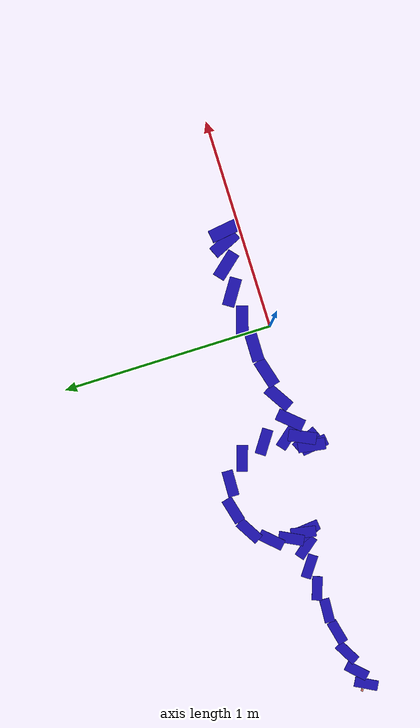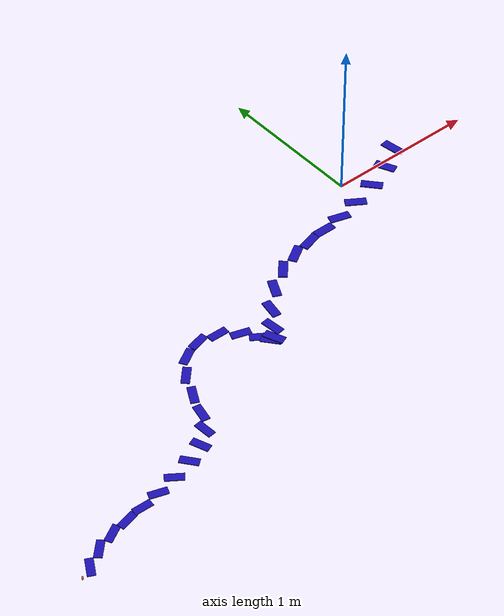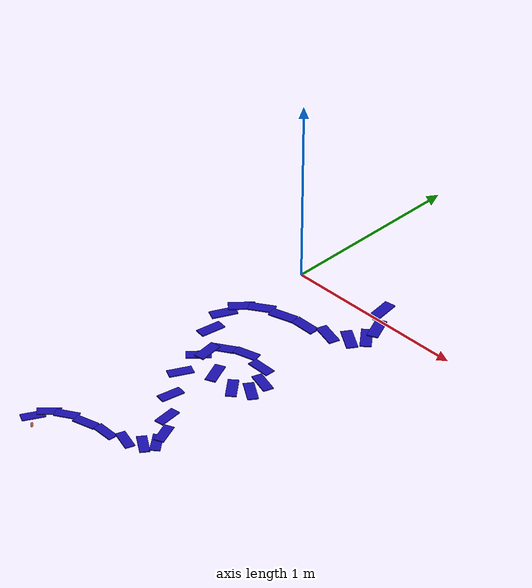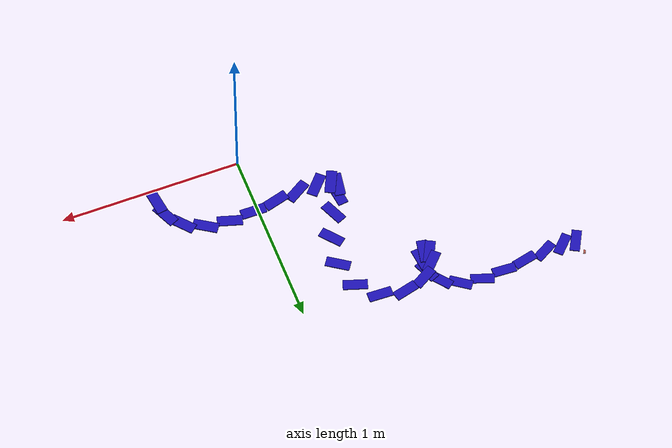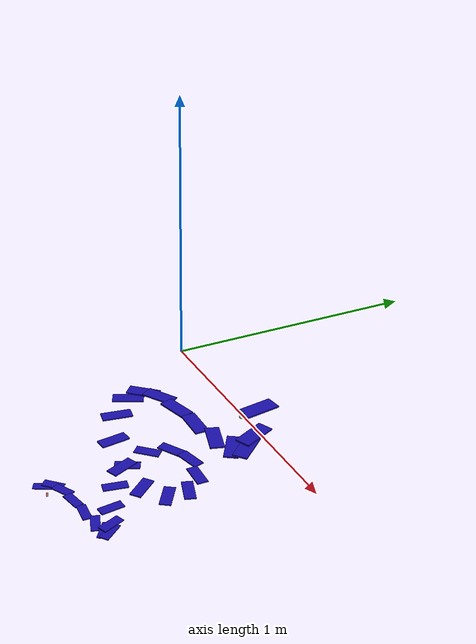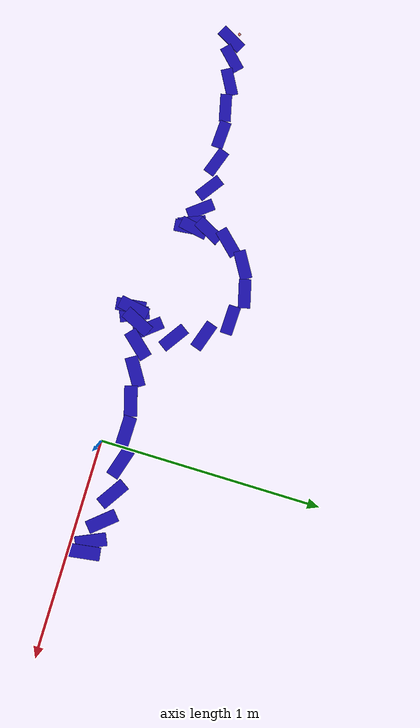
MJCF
<mujoco model="base">
  <compiler angle="radian"/>

  <option timestep="0.0005" tolerance="1e-10" integrator="RK4" cone="elliptic" jacobian="sparse" iterations="30"/>

  <size njmax="5000" nconmax="5000"/>

  <visual>
    <quality shadowsize="2048"/>
    <map stiffness="700" fogstart="10" fogend="15" znear="0.001" zfar="40" shadowscale="0.5"/>
    <rgba haze="0.15 0.25 0.35 1"/>
  </visual>

  <statistic meansize="0.05" extent="2"/>

  <extension>
    <plugin plugin="mujoco.elasticity.cable">
      <instance name="composite">
        <config key="twist" value="7859.503362562732"/>
        <config key="bend" value="1571900.6725125466"/>
        <config key="flat" value="false"/>
      </instance>
    </plugin>
  </extension>

  <asset>
    <texture type="skybox" builtin="gradient" rgb1="1 1 0.9" rgb2="0.9 0.9 0.81" width="512" height="3072"/>
    <texture type="2d" name="texplane" builtin="checker" mark="cross" rgb1="0.2 0.3 0.4" rgb2="0.1 0.15 0.2" markrgb="0.8 0.8 0.8" width="512" height="512"/>
    <material name="matplane" texture="texplane" texuniform="true" reflectance="0.3"/>
  </asset>

  <worldbody>
    <geom name="floor" size="3 3 0.125" pos="0 0 -10" type="plane" condim="1" material="matplane"/>
    <geom name="axis_x" size="0.002 0.015" pos="0.015 0 0" quat="0.707107 0 -0.707107 0" type="capsule" rgba="1 0 0 1"/>
    <geom name="axis_y" size="0.002 0.015" pos="0 0.015 0" quat="0.707107 0.707107 0 0" type="capsule" rgba="0 1 0 1"/>
    <geom name="axis_z" size="0.002 0.015" pos="0 0 0.015" quat="0 1 0 0" type="capsule" rgba="0 0 1 1"/>
    <body name="eef_body2" pos="0.5 0 0" quat="0 0.65522 0.755438 0">
      <geom name="eef_geom2" size="0.006 0.006 0.012" type="box" contype="0" conaffinity="0" mass="10" rgba="0.1 0.8 0.2 0.7"/>
      <site name="eef_body2_site" pos="0 0 0" size="0.01" group="2" rgba="0 0 0 0"/>
      <body name="eef_body2_sensor">
        <site name="sensor_site2" pos="0 0 0" size="0.01" group="2" rgba="0 0 0 0"/>
      </body>
    </body>
    <body name="eef_body" pos="-2.14969 0.0235843 -2.18129" quat="0 -0.515174 0.857086 0">
      <geom name="eef_geom" size="0.006 0.006 0.012" type="box" contype="0" conaffinity="0" mass="10" rgba="0.8 0.2 0.1 0.7"/>
      <site name="eef_body_site" pos="0 0 0" size="0.01" group="1" rgba="0 0 0 0"/>
      <body name="eef_body_sensor">
        <site name="sensor_site1" pos="0 0 0" size="0.01" group="1" rgba="0 0 0 0"/>
      </body>
    </body>
    <body name="stiffrope" pos="0.5 0 0">
      <joint name="freejoint_A" type="free" limited="false" actuatorfrclimited="false"/>
      <body name="B_0" quat="0 0.65522 0.755438 0">
        <geom name="G0" size="0.003 0.03 0.0706862" pos="0.0706862 0 0" quat="0.707107 0 -0.707107 0" type="box" conaffinity="0" condim="1" solref="0.001" mass="0.0038779" rgba="0.1 0.0533333 0.673333 1"/>
        <plugin instance="composite"/>
        <body name="B_1" pos="0.0199862 -0.0197854 0.138547" quat="0.989956 0 0 -0.141372">
          <joint name="J_1" pos="0 0 0" type="ball" group="3" actuatorfrclimited="false" damping="0.1"/>
          <geom name="G1" size="0.003 0.03 0.0706862" pos="0.0706862 0 0" quat="0.707107 0 -0.707107 0" type="box" conaffinity="0" condim="1" solref="0.001" mass="0.0038779" rgba="0.1 0.0533333 0.673333 1"/>
          <plugin instance="composite"/>
          <body name="B_2" pos="0.0583607 -0.0531558 0.11728" quat="0.989956 0 0 -0.141372">
            <joint name="J_2" pos="0 0 0" type="ball" group="3" actuatorfrclimited="false" damping="0.1"/>
            <geom name="G2" size="0.003 0.03 0.0706862" pos="0.0706862 0 0" quat="0.707107 0 -0.707107 0" type="box" conaffinity="0" condim="1" solref="0.001" mass="0.0038779" rgba="0.1 0.0533333 0.673333 1"/>
            <plugin instance="composite"/>
            <body name="B_3" pos="0.0920697 -0.0698678 0.0814115" quat="0.989956 0 0 -0.141372">
              <joint name="J_3" pos="0 0 0" type="ball" group="3" actuatorfrclimited="false" damping="0.1"/>
              <geom name="G3" size="0.003 0.03 0.0706862" pos="0.0706862 0 0" quat="0.707107 0 -0.707107 0" type="box" conaffinity="0" condim="1" solref="0.001" mass="0.0038779" rgba="0.1 0.0533333 0.673333 1"/>
              <plugin instance="composite"/>
              <body name="B_4" pos="0.118418 -0.0646841 0.0421817" quat="0.989956 0 0 -0.141372">
                <joint name="J_4" pos="0 0 0" type="ball" group="3" actuatorfrclimited="false" damping="0.1"/>
                <geom name="G4" size="0.003 0.03 0.0706862" pos="0.0706862 0 0" quat="0.707107 0 -0.707107 0" type="box" conaffinity="0" condim="1" solref="0.001" mass="0.0038779" rgba="0.1 0.0533333 0.673333 1"/>
                <plugin instance="composite"/>
                <body name="B_5" pos="0.1353 -0.0392292 0.0118848" quat="0.989956 0 0 -0.141372">
                  <joint name="J_5" pos="0 0 0" type="ball" group="3" actuatorfrclimited="false" damping="0.1"/>
                  <geom name="G5" size="0.003 0.03 0.0706862" pos="0.0706862 0 0" quat="0.707107 0 -0.707107 0" type="box" conaffinity="0" condim="1" solref="0.001" mass="0.0038779" rgba="0.1 0.0533333 0.673333 1"/>
                  <plugin instance="composite"/>
                  <body name="B_6" pos="0.141365 -0.00148034 1.55027e-05" quat="0.989956 0 0 -0.141372">
                    <joint name="J_6" pos="0 0 0" type="ball" group="3" actuatorfrclimited="false" damping="0.1"/>
                    <geom name="G6" size="0.003 0.03 0.0706862" pos="0.0706862 0 0" quat="0.707107 0 -0.707107 0" type="box" conaffinity="0" condim="1" solref="0.001" mass="0.0038779" rgba="0.1 0.0533333 0.673333 1"/>
                    <plugin instance="composite"/>
                    <body name="B_7" pos="0.136128 0.0367324 0.0102936" quat="0.989956 0 0 -0.141372">
                      <joint name="J_7" pos="0 0 0" type="ball" group="3" actuatorfrclimited="false" damping="0.1"/>
                      <geom name="G7" size="0.003 0.03 0.0706862" pos="0.0706862 0 0" quat="0.707107 0 -0.707107 0" type="box" conaffinity="0" condim="1" solref="0.001" mass="0.0038779" rgba="0.1 0.0533333 0.673333 1"/>
                      <plugin instance="composite"/>
                      <body name="B_8" pos="0.120009 0.0634337 0.039498" quat="0.989956 0 0 -0.141372">
                        <joint name="J_8" pos="0 0 0" type="ball" group="3" actuatorfrclimited="false" damping="0.1"/>
                        <geom name="G8" size="0.003 0.03 0.0706862" pos="0.0706862 0 0" quat="0.707107 0 -0.707107 0" type="box" conaffinity="0" condim="1" solref="0.001" mass="0.0038779" rgba="0.1 0.0533333 0.673333 1"/>
                        <plugin instance="composite"/>
                        <body name="B_9" pos="0.0942962 0.0702557 0.0784764" quat="0.989956 0 0 -0.141372">
                          <joint name="J_9" pos="0 0 0" type="ball" group="3" actuatorfrclimited="false" damping="0.1"/>
                          <geom name="G9" size="0.003 0.03 0.0706862" pos="0.0706862 0 0" quat="0.707107 0 -0.707107 0" type="box" conaffinity="0" condim="1" solref="0.001" mass="0.0038779" rgba="0.1 0.0533333 0.673333 1"/>
                          <plugin instance="composite"/>
                          <body name="B_10" pos="0.0610446 0.0550603 0.115013" quat="0.989956 0 0 -0.141372">
                            <joint name="J_10" pos="0 0 0" type="ball" group="3" actuatorfrclimited="false" damping="0.1"/>
                            <geom name="G10" size="0.003 0.03 0.0706862" pos="0.0706862 0 0" quat="0.707107 0 -0.707107 0" type="box" conaffinity="0" condim="1" solref="0.001" mass="0.0038779" rgba="0.1 0.0533333 0.673333 1"/>
                            <plugin instance="composite"/>
                            <body name="B_11" pos="0.0229127 0.0226098 0.137659" quat="-0.989956 0 0 0.141372">
                              <joint name="J_11" pos="0 0 0" type="ball" group="3" actuatorfrclimited="false" damping="0.1"/>
                              <geom name="G11" size="0.003 0.03 0.0706862" pos="0.0706862 0 0" quat="0.707107 0 -0.707107 0" type="box" conaffinity="0" condim="1" solref="0.001" mass="0.0038779" rgba="0.1 0.0533333 0.673333 1"/>
                              <plugin instance="composite"/>
                              <body name="B_12" pos="-0.0170508 -0.0169264 0.139316" quat="0.989956 0 0 -0.141372">
                                <joint name="J_12" pos="0 0 0" type="ball" group="3" actuatorfrclimited="false" damping="0.1"/>
                                <geom name="G12" size="0.003 0.03 0.0706862" pos="0.0706862 0 0" quat="0.707107 0 -0.707107 0" type="box" conaffinity="0" condim="1" solref="0.001" mass="0.0038779" rgba="0.1 0.0533333 0.673333 1"/>
                                <plugin instance="composite"/>
                                <body name="B_13" pos="-0.0556513 -0.051158 0.119465" quat="0.989956 0 0 -0.141372">
                                  <joint name="J_13" pos="0 0 0" type="ball" group="3" actuatorfrclimited="false" damping="0.1"/>
                                  <geom name="G13" size="0.003 0.03 0.0706862" pos="0.0706862 0 0" quat="0.707107 0 -0.707107 0" type="box" conaffinity="0" condim="1" solref="0.001" mass="0.0038779" rgba="0.1 0.0533333 0.673333 1"/>
                                  <plugin instance="composite"/>
                                  <body name="B_14" pos="-0.0898027 -0.0693574 0.0843279" quat="0.989956 0 0 -0.141372">
                                    <joint name="J_14" pos="0 0 0" type="ball" group="3" actuatorfrclimited="false" damping="0.1"/>
                                    <geom name="G14" size="0.003 0.03 0.0706862" pos="0.0706862 0 0" quat="0.707107 0 -0.707107 0" type="box" conaffinity="0" condim="1" solref="0.001" mass="0.0038779" rgba="0.1 0.0533333 0.673333 1"/>
                                    <plugin instance="composite"/>
                                    <body name="B_15" pos="-0.116775 -0.065821 0.0449154" quat="0.989956 0 0 -0.141372">
                                      <joint name="J_15" pos="0 0 0" type="ball" group="3" actuatorfrclimited="false" damping="0.1"/>
                                      <geom name="G15" size="0.003 0.03 0.0706862" pos="0.0706862 0 0" quat="0.707107 0 -0.707107 0" type="box" conaffinity="0" condim="1" solref="0.001" mass="0.0038779" rgba="0.1 0.0533333 0.673333 1"/>
                                      <plugin instance="composite"/>
                                      <body name="B_16" pos="-0.134412 -0.0416571 0.0135791" quat="0.989956 0 0 -0.141372">
                                        <joint name="J_16" pos="0 0 0" type="ball" group="3" actuatorfrclimited="false" damping="0.1"/>
                                        <geom name="G16" size="0.003 0.03 0.0706862" pos="0.0706862 0 0" quat="0.707107 0 -0.707107 0" type="box" conaffinity="0" condim="1" solref="0.001" mass="0.0038779" rgba="0.1 0.0533333 0.673333 1"/>
                                        <plugin instance="composite"/>
                                        <body name="B_17" pos="-0.141303 -0.00443843 0.000139483" quat="0.989956 0 0 -0.141372">
                                          <joint name="J_17" pos="0 0 0" type="ball" group="3" actuatorfrclimited="false" damping="0.1"/>
                                          <geom name="G17" size="0.003 0.03 0.0706862" pos="0.0706862 0 0" quat="0.707107 0 -0.707107 0" type="box" conaffinity="0" condim="1" solref="0.001" mass="0.0038779" rgba="0.1 0.0533333 0.673333 1"/>
                                          <plugin instance="composite"/>
                                          <body name="B_18" pos="-0.136897 0.0341712 0.00880836" quat="0.989956 0 0 -0.141372">
                                            <joint name="J_18" pos="0 0 0" type="ball" group="3" actuatorfrclimited="false" damping="0.1"/>
                                            <geom name="G18" size="0.003 0.03 0.0706862" pos="0.0706862 0 0" quat="0.707107 0 -0.707107 0" type="box" conaffinity="0" condim="1" solref="0.001" mass="0.0038779" rgba="0.1 0.0533333 0.673333 1"/>
                                            <plugin instance="composite"/>
                                            <body name="B_19" pos="-0.121548 0.062072 0.036869" quat="0.989956 0 0 -0.141372">
                                              <joint name="J_19" pos="0 0 0" type="ball" group="3" actuatorfrclimited="false" damping="0.1"/>
                                              <geom name="G19" size="0.003 0.03 0.0706862" pos="0.0706862 0 0" quat="0.707107 0 -0.707107 0" type="box" conaffinity="0" condim="1" solref="0.001" mass="0.0038779" rgba="0.1 0.0533333 0.673333 1"/>
                                              <plugin instance="composite"/>
                                              <body name="B_20" pos="-0.0964814 0.0705202 0.0755275" quat="0.989956 0 0 -0.141372">
                                                <joint name="J_20" pos="0 0 0" type="ball" group="3" actuatorfrclimited="false" damping="0.1"/>
                                                <geom name="G20" size="0.003 0.03 0.0706862" pos="0.0706862 0 0" quat="0.707107 0 -0.707107 0" type="box" conaffinity="0" condim="1" solref="0.001" mass="0.0038779" rgba="0.1 0.0533333 0.673333 1"/>
                                                <plugin instance="composite"/>
                                                <body name="B_21" pos="-0.0637016 0.0568683 0.112669" quat="0.989956 0 0 -0.141372">
                                                  <joint name="J_21" pos="0 0 0" type="ball" group="3" actuatorfrclimited="false" damping="0.1"/>
                                                  <geom name="G21" size="0.003 0.03 0.0706862" pos="0.0706862 0 0" quat="0.707107 0 -0.707107 0" type="box" conaffinity="0" condim="1" solref="0.001" mass="0.0038779" rgba="0.1 0.0533333 0.673333 1"/>
                                                  <plugin instance="composite"/>
                                                  <body name="B_22" pos="-0.0258292 0.0253945 0.136653" quat="0.989956 0 0 -0.141372">
                                                    <joint name="J_22" pos="0 0 0" type="ball" group="3" actuatorfrclimited="false" damping="0.1"/>
                                                    <geom name="G22" size="0.003 0.03 0.0706862" pos="0.0706862 0 0" quat="0.707107 0 -0.707107 0" type="box" conaffinity="0" condim="1" solref="0.001" mass="0.0038779" rgba="0.1 0.0533333 0.673333 1"/>
                                                    <plugin instance="composite"/>
                                                    <body name="B_23" pos="0.014108 -0.0140376 0.139965" quat="0.989956 0 0 -0.141372">
                                                      <joint name="J_23" pos="0 0 0" type="ball" group="3" actuatorfrclimited="false" damping="0.1"/>
                                                      <geom name="G23" size="0.003 0.03 0.0706862" pos="0.0706862 0 0" quat="0.707107 0 -0.707107 0" type="box" conaffinity="0" condim="1" solref="0.001" mass="0.0038779" rgba="0.1 0.0533333 0.673333 1"/>
                                                      <plugin instance="composite"/>
                                                      <body name="B_24" pos="0.0529175 -0.0490705 0.121565" quat="0.989956 0 0 -0.141372">
                                                        <joint name="J_24" pos="0 0 0" type="ball" group="3" actuatorfrclimited="false" damping="0.1"/>
                                                        <geom name="G24" size="0.003 0.03 0.0706862" pos="0.0706862 0 0" quat="0.707107 0 -0.707107 0" type="box" conaffinity="0" condim="1" solref="0.001" mass="0.0038779" rgba="0.1 0.0533333 0.673333 1"/>
                                                        <plugin instance="composite"/>
                                                        <body name="B_25" pos="0.0874964 -0.0687253 0.0872203" quat="0.989956 0 0 -0.141372">
                                                          <joint name="J_25" pos="0 0 0" type="ball" group="3" actuatorfrclimited="false" damping="0.1"/>
                                                          <geom name="G25" size="0.003 0.03 0.0706862" pos="0.0706862 0 0" quat="0.707107 0 -0.707107 0" type="box" conaffinity="0" condim="1" solref="0.001" mass="0.0038779" rgba="0.1 0.0533333 0.673333 1"/>
                                                          <plugin instance="composite"/>
                                                          <body name="B_26" pos="0.11508 -0.0668424 0.0476943" quat="0.989956 0 0 -0.141372">
                                                            <joint name="J_26" pos="0 0 0" type="ball" group="3" actuatorfrclimited="false" damping="0.1"/>
                                                            <geom name="G26" size="0.003 0.03 0.0706862" pos="0.0706862 0 0" quat="0.707107 0 -0.707107 0" type="box" conaffinity="0" condim="1" solref="0.001" mass="0.0038779" rgba="0.1 0.0533333 0.673333 1"/>
                                                            <plugin instance="composite"/>
                                                            <body name="B_27" pos="0.133464 -0.044012 0.0153736" quat="0.989956 0 0 -0.141372">
                                                              <joint name="J_27" pos="0 0 0" type="ball" group="3" actuatorfrclimited="false" damping="0.1"/>
                                                              <geom name="G27" size="0.003 0.03 0.0706862" pos="0.0706862 0 0" quat="0.707107 0 -0.707107 0" type="box" conaffinity="0" condim="1" solref="0.001" mass="0.0038779" rgba="0.1 0.0533333 0.673333 1"/>
                                                              <plugin instance="composite"/>
                                                              <body name="B_28" pos="0.141179 -0.00738872 0.000387227" quat="0.989956 0 0 -0.141372">
                                                                <joint name="J_28" pos="0 0 0" type="ball" group="3" actuatorfrclimited="false" damping="0.1"/>
                                                                <geom name="G28" size="0.003 0.03 0.0706862" pos="0.0706862 0 0" quat="0.707107 0 -0.707107 0" type="box" conaffinity="0" condim="1" solref="0.001" mass="0.0038779" rgba="0.1 0.0533333 0.673333 1"/>
                                                                <plugin instance="composite"/>
                                                                <body name="B_29" pos="0.137606 0.0315501 0.0074317" quat="0.989956 0 0 -0.141372">
                                                                  <joint name="J_29" pos="0 0 0" type="ball" group="3" actuatorfrclimited="false" damping="0.1"/>
                                                                  <geom name="G29" size="0.003 0.03 0.0706862" pos="0.0706862 0 0" quat="0.707107 0 -0.707107 0" type="box" conaffinity="0" condim="1" solref="0.001" mass="0.0038779" rgba="0.1 0.0533333 0.673333 1"/>
                                                                  <plugin instance="composite"/>
                                                                  <body name="B_30" pos="0.123033 0.0606015 0.0342994" quat="0.989956 0 0 -0.141372">
                                                                    <joint name="J_30" pos="0 0 0" type="ball" group="3" actuatorfrclimited="false" damping="0.1"/>
                                                                    <geom name="G30" size="0.003 0.03 0.0706862" pos="0.0706862 0 0" quat="0.707107 0 -0.707107 0" type="box" conaffinity="0" condim="1" solref="0.001" mass="0.0038779" rgba="0.1 0.0533333 0.673333 1"/>
                                                                    <plugin instance="composite"/>
                                                                    <body name="B_last" pos="0.0986243 0.0706611 0.0725702" quat="0.989956 0 0 -0.141372">
                                                                      <joint name="J_last" pos="0 0 0" type="ball" group="3" actuatorfrclimited="false" damping="0.1"/>
                                                                      <geom name="G31" size="0.003 0.03 0.0706862" pos="0.0706862 0 0" quat="0.707107 0 -0.707107 0" type="box" conaffinity="0" condim="1" solref="0.001" mass="0.0038779" rgba="0.1 0.0533333 0.673333 1"/>
                                                                      <plugin instance="composite"/>
                                                                      <body name="B_last2" pos="0.0663307 0.0585764 0.110251">
                                                                        <plugin instance="composite"/>
                                                                      </body>
                                                                    </body>
                                                                  </body>
                                                                </body>
                                                              </body>
                                                            </body>
                                                          </body>
                                                        </body>
                                                      </body>
                                                    </body>
                                                  </body>
                                                </body>
                                              </body>
                                            </body>
                                          </body>
                                        </body>
                                      </body>
                                    </body>
                                  </body>
                                </body>
                              </body>
                            </body>
                          </body>
                        </body>
                      </body>
                    </body>
                  </body>
                </body>
              </body>
            </body>
          </body>
        </body>
      </body>
    </body>
  </worldbody>

  <equality>
    <weld name="weld_end" body1="B_last" body2="eef_body_sensor" anchor="0 0 0" relpose="0.0663307 0.0585764 0.110251 1 0 0 0" torquescale="1" solref="0.001"/>
    <weld name="weld_start" body1="B_0" body2="eef_body2_sensor" anchor="0 0 0" relpose="0 0 0 1 0 0 0" torquescale="1" solref="0.001"/>
  </equality>

  <sensor>
    <torque site="sensor_site1" name="torque_A"/>
    <force site="sensor_site1" name="force_A"/>
    <torque site="sensor_site2" name="torque_B"/>
    <force site="sensor_site2" name="force_B"/>
  </sensor>
</mujoco>
